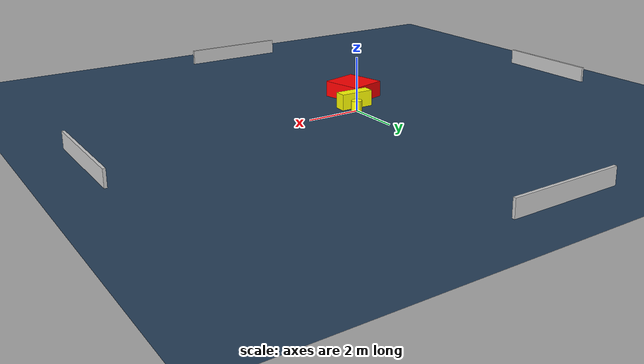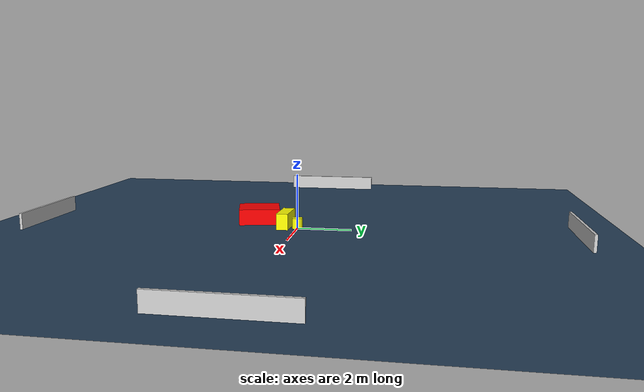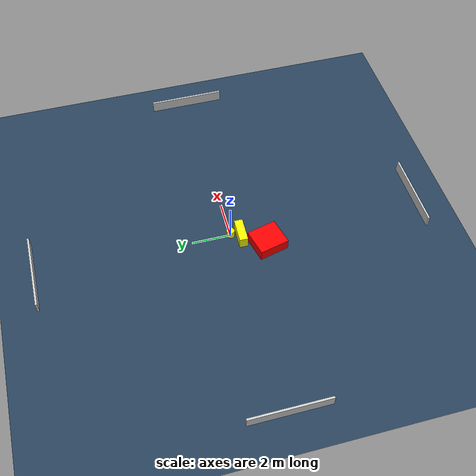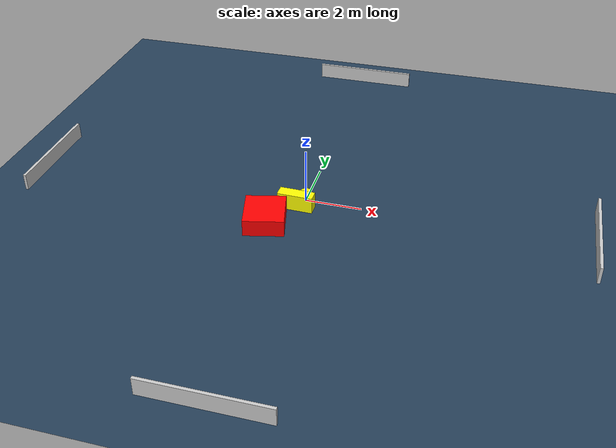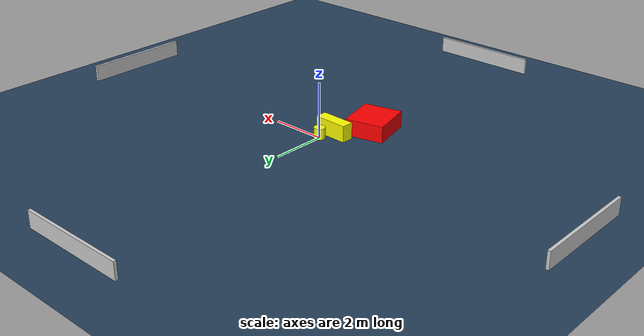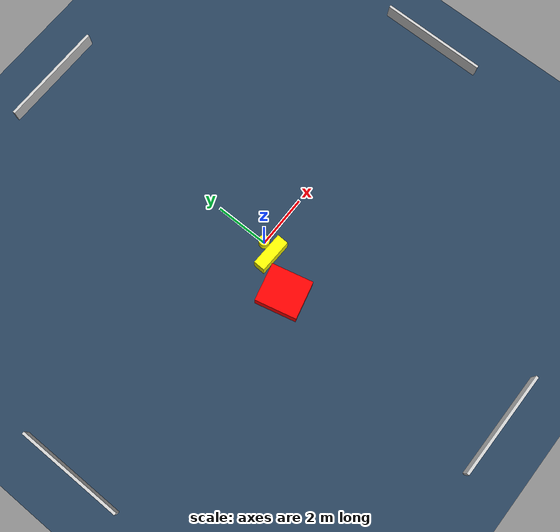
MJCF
<?xml version="1.0" ?>
<mujoco model="generated_environment">
  <option timestep="0.01" integrator="RK4" cone="elliptic"/>
  <default>
    <geom density="1"/>
  </default>
  <asset>
    <texture builtin="gradient" height="3072" name="skybox" rgb1="0.3 0.5 0.7" rgb2="0 0 0" type="skybox" width="512"/>
    <texture builtin="checker" height="300" name="groundplane" rgb1="0.2 0.3 0.4" rgb2="0.1 0.2 0.3" type="2d" width="300"/>
    <material name="groundplane" reflectance="0.2" texrepeat="5 5" texture="groundplane"/>
  </asset>
  <worldbody>
    <light dir="0 0 -1" directional="true" pos="0 0 1.5"/>
    <geom condim="3" friction="0.5 0.005 0.001" material="groundplane" name="floor" pos="0 0 0" size="0 0 0.05" type="plane"/>
    <body name="walls">
      <geom name="wall_1" condim="4" pos="-10.0 0.0 0.3" rgba="0.800000011920929 0.800000011920929 0.800000011920929 1.0" size="0.05 2.0 0.3" type="box"/>
      <geom name="wall_2" condim="4" pos="10.0 0.0 0.3" rgba="0.800000011920929 0.800000011920929 0.800000011920929 1.0" size="0.05 2.0 0.3" type="box"/>
      <geom name="wall_3" condim="4" pos="0.0 -10.0 0.3" rgba="0.800000011920929 0.800000011920929 0.800000011920929 1.0" size="2.0 0.05 0.3" type="box"/>
      <geom name="wall_4" condim="4" pos="0.0 10.0 0.3" rgba="0.800000011920929 0.800000011920929 0.800000011920929 1.0" size="2.0 0.05 0.3" type="box"/>
    </body>
    <body name="robot">
      <joint name="joint_x" type="slide" pos="0 0 0" axis="1 0 0"/>
      <joint name="joint_y" type="slide" pos="0 0 0" axis="0 1 0"/>
      <geom name="robot" type="cylinder" pos="0.0 0.0 0.2" size="0.2 0.2 0.0" mass="5.0" friction="1.0 0.005 0.0001" condim="4" rgba="1.0 1.0 0.0 1.0"/>
    </body>
    <body name="obstacle_1_movable">
      <geom name="obstacle_1_movable" condim="4" pos="-0.22875646766402713 -0.4869276711934446 0.3" euler="0 0 358.12679013314033" friction="0.0 0.005 0.001" rgba="1.0 1.0 0.0 1.0" size="0.6339665103067498 0.21638413228050257 0.3" type="box" mass="0.1"/>
      <joint type="free"/>
    </body>
    <body name="obstacle_2_static">
      <geom name="obstacle_2_static" condim="4" pos="-1.0050349602377342 -1.6768450972445361 0.3" euler="0 0 193.5889023063263" friction="0.0 0.005 0.001" rgba="1.0 0.0 0.0 1.0" size="0.7054674785464088 0.7745786979197178 0.3" type="box"/>
    </body>
  </worldbody>
  <actuator>
    <motor name="actuator_x" joint="joint_x" gear="1" ctrlrange="-1 1"/>
    <motor name="actuator_y" joint="joint_y" gear="1" ctrlrange="-1 1"/>
  </actuator>
</mujoco>
